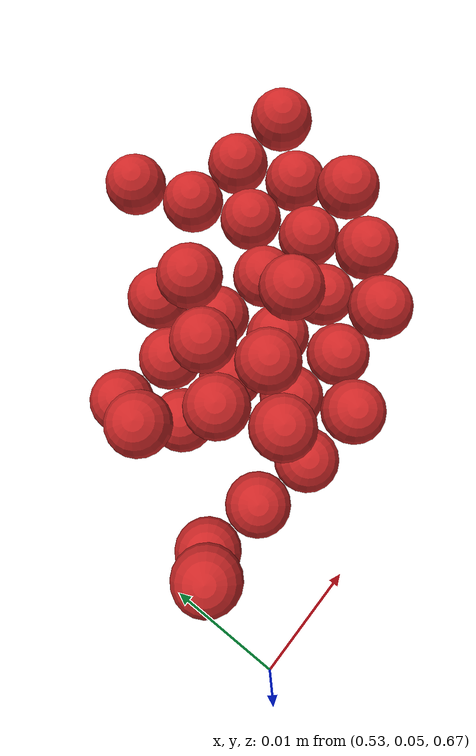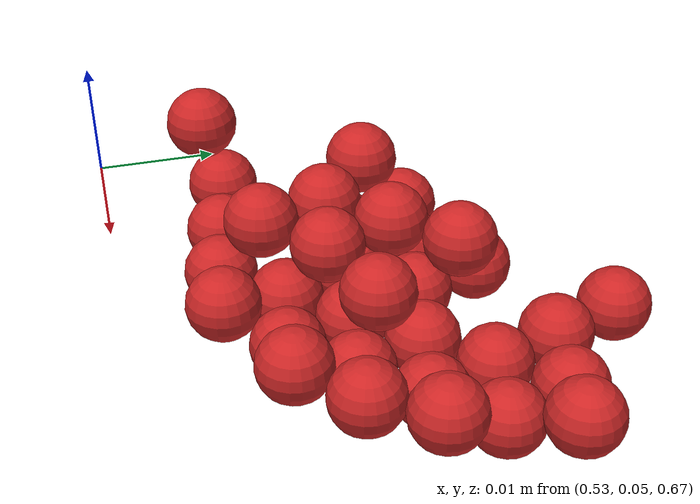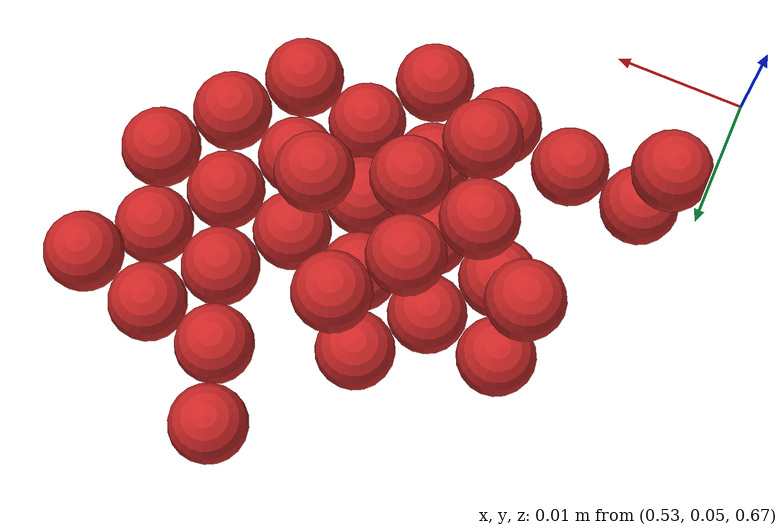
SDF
<sdf version="1.4">
 <world name="default">
  <model name="ground_plane">
   <static>1</static>
   <link name="link">
    <collision name="collision">
     <geometry><plane><normal>0 0 1</normal><size>100 100</size></plane></geometry>
     <surface><friction><ode><mu>100</mu><mu2>50</mu2></ode></friction></surface>
    </collision>
    <visual name="visual">
     <cast_shadows>0</cast_shadows>
     <geometry><plane><normal>0 0 1</normal><size>100 100</size></plane></geometry>
     <material>
      <script><uri>file://media/materials/scripts/gazebo.material</uri><name>Gazebo/Grey</name></script>
     </material>
    </visual>
    <velocity_decay><linear>0</linear><angular>0</angular></velocity_decay>
   </link>
  </model>
  <model name="sphere1">
   <pose>0.000168 -0.008124 -0.026197 0.000256 -0.000729 0.000186</pose>
   <link name="link">
    <pose>0.540545 0.067517 0.694885 0 -0 0</pose>
    <inertial>
     <mass>1e-08</mass>
     <inertia><ixx>4e-08</ixx><ixy>0</ixy><ixz>0</ixz><iyy>4e-08</iyy><iyz>0</iyz><izz>4e-08</izz></inertia>
    </inertial>
    <collision name="collision">
     <surface>
      <bounce><restitution_coefficient>0.5</restitution_coefficient><threshold>0</threshold></bounce>
      <contact><ode><kp>1e+08</kp><kd>1</kd></ode></contact>
      <friction><ode><mu>1e-06</mu><mu2>1e-06</mu2></ode></friction>
     </surface>
     <geometry><sphere><radius>0.003</radius></sphere></geometry>
    </collision>
    <visual name="visual">
     <geometry><sphere><radius>0.003</radius></sphere></geometry>
     <material>
      <script><uri>file://media/materials/scripts/gazebo.material</uri><name>Gazebo/Red</name></script>
     </material>
    </visual>
    <velocity_decay><linear>0</linear><angular>0</angular></velocity_decay>
   </link>
   <static>0</static>
  </model>
  <model name="sphere2">
   <pose>0.003783 -0.004308 -0.026368 0.000322 -0.000606 -2.64698e-23</pose>
   <link name="link">
    <pose>0.546545 0.067517 0.694885 0 -0 0</pose>
    <inertial>
     <mass>1e-08</mass>
     <inertia><ixx>4e-08</ixx><ixy>0</ixy><ixz>0</ixz><iyy>4e-08</iyy><iyz>0</iyz><izz>4e-08</izz></inertia>
    </inertial>
    <collision name="collision">
     <surface>
      <bounce><restitution_coefficient>0.5</restitution_coefficient><threshold>0</threshold></bounce>
      <contact><ode><kp>1e+08</kp><kd>1</kd></ode></contact>
      <friction><ode><mu>1e-06</mu><mu2>1e-06</mu2></ode></friction>
     </surface>
     <geometry><sphere><radius>0.003</radius></sphere></geometry>
    </collision>
    <visual name="visual">
     <geometry><sphere><radius>0.003</radius></sphere></geometry>
     <material>
      <script><uri>file://media/materials/scripts/gazebo.material</uri><name>Gazebo/Red</name></script>
     </material>
    </visual>
    <velocity_decay><linear>0</linear><angular>0</angular></velocity_decay>
   </link>
   <static>0</static>
  </model>
  <model name="sphere3">
   <pose>0.012325 -0.001566 -0.023496 -0.000143 0.000357 -6e-05</pose>
   <link name="link">
    <pose>0.552545 0.067517 0.694885 0 -0 0</pose>
    <inertial>
     <mass>1e-08</mass>
     <inertia><ixx>4e-08</ixx><ixy>0</ixy><ixz>0</ixz><iyy>4e-08</iyy><iyz>0</iyz><izz>4e-08</izz></inertia>
    </inertial>
    <collision name="collision">
     <surface>
      <bounce><restitution_coefficient>0.5</restitution_coefficient><threshold>0</threshold></bounce>
      <contact><ode><kp>1e+08</kp><kd>1</kd></ode></contact>
      <friction><ode><mu>1e-06</mu><mu2>1e-06</mu2></ode></friction>
     </surface>
     <geometry><sphere><radius>0.003</radius></sphere></geometry>
    </collision>
    <visual name="visual">
     <geometry><sphere><radius>0.003</radius></sphere></geometry>
     <material>
      <script><uri>file://media/materials/scripts/gazebo.material</uri><name>Gazebo/Red</name></script>
     </material>
    </visual>
    <velocity_decay><linear>0</linear><angular>0</angular></velocity_decay>
   </link>
   <static>0</static>
  </model>
  <model name="sphere6">
   <pose>0.004831 -9.6e-05 -0.02579 0.00028 0.000304 0</pose>
   <link name="link">
    <pose>0.546545 0.073517 0.694885 0 -0 0</pose>
    <inertial>
     <mass>1e-08</mass>
     <inertia><ixx>4e-08</ixx><ixy>0</ixy><ixz>0</ixz><iyy>4e-08</iyy><iyz>0</iyz><izz>4e-08</izz></inertia>
    </inertial>
    <collision name="collision">
     <surface>
      <bounce><restitution_coefficient>0.5</restitution_coefficient><threshold>0</threshold></bounce>
      <contact><ode><kp>1e+08</kp><kd>1</kd></ode></contact>
      <friction><ode><mu>1e-06</mu><mu2>1e-06</mu2></ode></friction>
     </surface>
     <geometry><sphere><radius>0.003</radius></sphere></geometry>
    </collision>
    <visual name="visual">
     <geometry><sphere><radius>0.003</radius></sphere></geometry>
     <material>
      <script><uri>file://media/materials/scripts/gazebo.material</uri><name>Gazebo/Red</name></script>
     </material>
    </visual>
    <velocity_decay><linear>0</linear><angular>0</angular></velocity_decay>
   </link>
   <static>0</static>
  </model>
  <model name="sphere7">
   <pose>0.016099 -0.002313 -0.023103 8.5e-05 -6.7e-05 -0.000356</pose>
   <link name="link">
    <pose>0.552545 0.073517 0.694885 0 -0 0</pose>
    <inertial>
     <mass>1e-08</mass>
     <inertia><ixx>4e-08</ixx><ixy>0</ixy><ixz>0</ixz><iyy>4e-08</iyy><iyz>0</iyz><izz>4e-08</izz></inertia>
    </inertial>
    <collision name="collision">
     <surface>
      <bounce><restitution_coefficient>0.5</restitution_coefficient><threshold>0</threshold></bounce>
      <contact><ode><kp>1e+08</kp><kd>1</kd></ode></contact>
      <friction><ode><mu>1e-06</mu><mu2>1e-06</mu2></ode></friction>
     </surface>
     <geometry><sphere><radius>0.003</radius></sphere></geometry>
    </collision>
    <visual name="visual">
     <geometry><sphere><radius>0.003</radius></sphere></geometry>
     <material>
      <script><uri>file://media/materials/scripts/gazebo.material</uri><name>Gazebo/Red</name></script>
     </material>
    </visual>
    <velocity_decay><linear>0</linear><angular>0</angular></velocity_decay>
   </link>
   <static>0</static>
  </model>
  <model name="sphere18">
   <pose>-0.000647 -0.009367 -0.031409 -0.000324 0.000296 -7.7e-05</pose>
   <link name="link">
    <pose>0.546545 0.067517 0.700885 0 -0 0</pose>
    <inertial>
     <mass>1e-08</mass>
     <inertia><ixx>4e-08</ixx><ixy>0</ixy><ixz>0</ixz><iyy>4e-08</iyy><iyz>0</iyz><izz>4e-08</izz></inertia>
    </inertial>
    <collision name="collision">
     <surface>
      <bounce><restitution_coefficient>0.5</restitution_coefficient><threshold>0</threshold></bounce>
      <contact><ode><kp>1e+08</kp><kd>1</kd></ode></contact>
      <friction><ode><mu>1e-06</mu><mu2>1e-06</mu2></ode></friction>
     </surface>
     <geometry><sphere><radius>0.003</radius></sphere></geometry>
    </collision>
    <visual name="visual">
     <geometry><sphere><radius>0.003</radius></sphere></geometry>
     <material>
      <script><uri>file://media/materials/scripts/gazebo.material</uri><name>Gazebo/Red</name></script>
     </material>
    </visual>
    <velocity_decay><linear>0</linear><angular>0</angular></velocity_decay>
   </link>
   <static>0</static>
  </model>
  <model name="sphere19">
   <pose>0.003403 -0.00545 -0.032095 8.1e-05 -0.000187 -2.3e-05</pose>
   <link name="link">
    <pose>0.552545 0.067517 0.700885 0 -0 0</pose>
    <inertial>
     <mass>1e-08</mass>
     <inertia><ixx>4e-08</ixx><ixy>0</ixy><ixz>0</ixz><iyy>4e-08</iyy><iyz>0</iyz><izz>4e-08</izz></inertia>
    </inertial>
    <collision name="collision">
     <surface>
      <bounce><restitution_coefficient>0.5</restitution_coefficient><threshold>0</threshold></bounce>
      <contact><ode><kp>1e+08</kp><kd>1</kd></ode></contact>
      <friction><ode><mu>1e-06</mu><mu2>1e-06</mu2></ode></friction>
     </surface>
     <geometry><sphere><radius>0.003</radius></sphere></geometry>
    </collision>
    <visual name="visual">
     <geometry><sphere><radius>0.003</radius></sphere></geometry>
     <material>
      <script><uri>file://media/materials/scripts/gazebo.material</uri><name>Gazebo/Red</name></script>
     </material>
    </visual>
    <velocity_decay><linear>0</linear><angular>0</angular></velocity_decay>
   </link>
   <static>0</static>
  </model>
  <model name="sphere23">
   <pose>0.010411 -0.002792 -0.031521 -0.000836 0.000662 9e-06</pose>
   <link name="link">
    <pose>0.552545 0.073517 0.700885 0 -0 0</pose>
    <inertial>
     <mass>1e-08</mass>
     <inertia><ixx>4e-08</ixx><ixy>0</ixy><ixz>0</ixz><iyy>4e-08</iyy><iyz>0</iyz><izz>4e-08</izz></inertia>
    </inertial>
    <collision name="collision">
     <surface>
      <bounce><restitution_coefficient>0.5</restitution_coefficient><threshold>0</threshold></bounce>
      <contact><ode><kp>1e+08</kp><kd>1</kd></ode></contact>
      <friction><ode><mu>1e-06</mu><mu2>1e-06</mu2></ode></friction>
     </surface>
     <geometry><sphere><radius>0.003</radius></sphere></geometry>
    </collision>
    <visual name="visual">
     <geometry><sphere><radius>0.003</radius></sphere></geometry>
     <material>
      <script><uri>file://media/materials/scripts/gazebo.material</uri><name>Gazebo/Red</name></script>
     </material>
    </visual>
    <velocity_decay><linear>0</linear><angular>0</angular></velocity_decay>
   </link>
   <static>0</static>
  </model>
  <model name="sphere27">
   <pose>0.012449 0.001611 -0.031825 -0.000596 0.000119 1.1e-05</pose>
   <link name="link">
    <pose>0.552545 0.079517 0.700885 0 -0 0</pose>
    <inertial>
     <mass>1e-08</mass>
     <inertia><ixx>4e-08</ixx><ixy>0</ixy><ixz>0</ixz><iyy>4e-08</iyy><iyz>0</iyz><izz>4e-08</izz></inertia>
    </inertial>
    <collision name="collision">
     <surface>
      <bounce><restitution_coefficient>0.5</restitution_coefficient><threshold>0</threshold></bounce>
      <contact><ode><kp>1e+08</kp><kd>1</kd></ode></contact>
      <friction><ode><mu>1e-06</mu><mu2>1e-06</mu2></ode></friction>
     </surface>
     <geometry><sphere><radius>0.003</radius></sphere></geometry>
    </collision>
    <visual name="visual">
     <geometry><sphere><radius>0.003</radius></sphere></geometry>
     <material>
      <script><uri>file://media/materials/scripts/gazebo.material</uri><name>Gazebo/Red</name></script>
     </material>
    </visual>
    <velocity_decay><linear>0</linear><angular>0</angular></velocity_decay>
   </link>
   <static>0</static>
  </model>
  <model name="sphere32">
   <pose>-0.000154 -0.006746 -0.03734 0.000604 -0.00014 -5.2e-05</pose>
   <link name="link">
    <pose>0.534545 0.067517 0.706885 0 -0 0</pose>
    <inertial>
     <mass>1e-08</mass>
     <inertia><ixx>4e-08</ixx><ixy>0</ixy><ixz>0</ixz><iyy>4e-08</iyy><iyz>0</iyz><izz>4e-08</izz></inertia>
    </inertial>
    <collision name="collision">
     <surface>
      <bounce><restitution_coefficient>0.5</restitution_coefficient><threshold>0</threshold></bounce>
      <contact><ode><kp>1e+08</kp><kd>1</kd></ode></contact>
      <friction><ode><mu>1e-06</mu><mu2>1e-06</mu2></ode></friction>
     </surface>
     <geometry><sphere><radius>0.003</radius></sphere></geometry>
    </collision>
    <visual name="visual">
     <geometry><sphere><radius>0.003</radius></sphere></geometry>
     <material>
      <script><uri>file://media/materials/scripts/gazebo.material</uri><name>Gazebo/Red</name></script>
     </material>
    </visual>
    <velocity_decay><linear>0</linear><angular>0</angular></velocity_decay>
   </link>
   <static>0</static>
  </model>
  <model name="sphere33">
   <pose>0.006077 -0.005772 -0.032692 0 -0 0</pose>
   <link name="link">
    <pose>0.540545 0.067517 0.706885 0 -0 0</pose>
    <inertial>
     <mass>1e-08</mass>
     <inertia><ixx>4e-08</ixx><ixy>0</ixy><ixz>0</ixz><iyy>4e-08</iyy><iyz>0</iyz><izz>4e-08</izz></inertia>
    </inertial>
    <collision name="collision">
     <surface>
      <bounce><restitution_coefficient>0.5</restitution_coefficient><threshold>0</threshold></bounce>
      <contact><ode><kp>1e+08</kp><kd>1</kd></ode></contact>
      <friction><ode><mu>1e-06</mu><mu2>1e-06</mu2></ode></friction>
     </surface>
     <geometry><sphere><radius>0.003</radius></sphere></geometry>
    </collision>
    <visual name="visual">
     <geometry><sphere><radius>0.003</radius></sphere></geometry>
     <material>
      <script><uri>file://media/materials/scripts/gazebo.material</uri><name>Gazebo/Red</name></script>
     </material>
    </visual>
    <velocity_decay><linear>0</linear><angular>0</angular></velocity_decay>
   </link>
   <static>0</static>
  </model>
  <model name="sphere34">
   <pose>0.007107 0.000179 -0.037913 0.000113 8.3e-05 -3e-06</pose>
   <link name="link">
    <pose>0.546545 0.067517 0.706885 0 -0 0</pose>
    <inertial>
     <mass>1e-08</mass>
     <inertia><ixx>4e-08</ixx><ixy>0</ixy><ixz>0</ixz><iyy>4e-08</iyy><iyz>0</iyz><izz>4e-08</izz></inertia>
    </inertial>
    <collision name="collision">
     <surface>
      <bounce><restitution_coefficient>0.5</restitution_coefficient><threshold>0</threshold></bounce>
      <contact><ode><kp>1e+08</kp><kd>1</kd></ode></contact>
      <friction><ode><mu>1e-06</mu><mu2>1e-06</mu2></ode></friction>
     </surface>
     <geometry><sphere><radius>0.003</radius></sphere></geometry>
    </collision>
    <visual name="visual">
     <geometry><sphere><radius>0.003</radius></sphere></geometry>
     <material>
      <script><uri>file://media/materials/scripts/gazebo.material</uri><name>Gazebo/Red</name></script>
     </material>
    </visual>
    <velocity_decay><linear>0</linear><angular>0</angular></velocity_decay>
   </link>
   <static>0</static>
  </model>
  <model name="sphere39">
   <pose>0.014796 0.002671 -0.038138 0.000351 -0.000175 1.1e-05</pose>
   <link name="link">
    <pose>0.552545 0.073517 0.706885 0 -0 0</pose>
    <inertial>
     <mass>1e-08</mass>
     <inertia><ixx>4e-08</ixx><ixy>0</ixy><ixz>0</ixz><iyy>4e-08</iyy><iyz>0</iyz><izz>4e-08</izz></inertia>
    </inertial>
    <collision name="collision">
     <surface>
      <bounce><restitution_coefficient>0.5</restitution_coefficient><threshold>0</threshold></bounce>
      <contact><ode><kp>1e+08</kp><kd>1</kd></ode></contact>
      <friction><ode><mu>1e-06</mu><mu2>1e-06</mu2></ode></friction>
     </surface>
     <geometry><sphere><radius>0.003</radius></sphere></geometry>
    </collision>
    <visual name="visual">
     <geometry><sphere><radius>0.003</radius></sphere></geometry>
     <material>
      <script><uri>file://media/materials/scripts/gazebo.material</uri><name>Gazebo/Red</name></script>
     </material>
    </visual>
    <velocity_decay><linear>0</linear><angular>0</angular></velocity_decay>
   </link>
   <static>0</static>
  </model>
  <model name="sphere43">
   <pose>0.01812 0.000888 -0.035838 -0.000183 -0.000245 -0.000251</pose>
   <link name="link">
    <pose>0.552545 0.079517 0.706885 0 -0 0</pose>
    <inertial>
     <mass>1e-08</mass>
     <inertia><ixx>4e-08</ixx><ixy>0</ixy><ixz>0</ixz><iyy>4e-08</iyy><iyz>0</iyz><izz>4e-08</izz></inertia>
    </inertial>
    <collision name="collision">
     <surface>
      <bounce><restitution_coefficient>0.5</restitution_coefficient><threshold>0</threshold></bounce>
      <contact><ode><kp>1e+08</kp><kd>1</kd></ode></contact>
      <friction><ode><mu>1e-06</mu><mu2>1e-06</mu2></ode></friction>
     </surface>
     <geometry><sphere><radius>0.003</radius></sphere></geometry>
    </collision>
    <visual name="visual">
     <geometry><sphere><radius>0.003</radius></sphere></geometry>
     <material>
      <script><uri>file://media/materials/scripts/gazebo.material</uri><name>Gazebo/Red</name></script>
     </material>
    </visual>
    <velocity_decay><linear>0</linear><angular>0</angular></velocity_decay>
   </link>
   <static>0</static>
  </model>
  <model name="sphere50">
   <pose>0.005594 -0.009769 -0.042226 0.000399 -7.8e-05 0.000431</pose>
   <link name="link">
    <pose>0.546545 0.067517 0.712885 0 -0 0</pose>
    <inertial>
     <mass>1e-08</mass>
     <inertia><ixx>4e-08</ixx><ixy>0</ixy><ixz>0</ixz><iyy>4e-08</iyy><iyz>0</iyz><izz>4e-08</izz></inertia>
    </inertial>
    <collision name="collision">
     <surface>
      <bounce><restitution_coefficient>0.5</restitution_coefficient><threshold>0</threshold></bounce>
      <contact><ode><kp>1e+08</kp><kd>1</kd></ode></contact>
      <friction><ode><mu>1e-06</mu><mu2>1e-06</mu2></ode></friction>
     </surface>
     <geometry><sphere><radius>0.003</radius></sphere></geometry>
    </collision>
    <visual name="visual">
     <geometry><sphere><radius>0.003</radius></sphere></geometry>
     <material>
      <script><uri>file://media/materials/scripts/gazebo.material</uri><name>Gazebo/Red</name></script>
     </material>
    </visual>
    <velocity_decay><linear>0</linear><angular>0</angular></velocity_decay>
   </link>
   <static>0</static>
  </model>
  <model name="sphere51">
   <pose>0.008688 -0.005814 -0.041328 0.00066 -6.8e-05 0.000597</pose>
   <link name="link">
    <pose>0.552545 0.067517 0.712885 0 -0 0</pose>
    <inertial>
     <mass>1e-08</mass>
     <inertia><ixx>4e-08</ixx><ixy>0</ixy><ixz>0</ixz><iyy>4e-08</iyy><iyz>0</iyz><izz>4e-08</izz></inertia>
    </inertial>
    <collision name="collision">
     <surface>
      <bounce><restitution_coefficient>0.5</restitution_coefficient><threshold>0</threshold></bounce>
      <contact><ode><kp>1e+08</kp><kd>1</kd></ode></contact>
      <friction><ode><mu>1e-06</mu><mu2>1e-06</mu2></ode></friction>
     </surface>
     <geometry><sphere><radius>0.003</radius></sphere></geometry>
    </collision>
    <visual name="visual">
     <geometry><sphere><radius>0.003</radius></sphere></geometry>
     <material>
      <script><uri>file://media/materials/scripts/gazebo.material</uri><name>Gazebo/Red</name></script>
     </material>
    </visual>
    <velocity_decay><linear>0</linear><angular>0</angular></velocity_decay>
   </link>
   <static>0</static>
  </model>
  <model name="sphere53">
   <pose>-0.001368 -0.001823 -0.039089 0 -0 0</pose>
   <link name="link">
    <pose>0.540545 0.073517 0.712885 0 -0 0</pose>
    <inertial>
     <mass>1e-08</mass>
     <inertia><ixx>4e-08</ixx><ixy>0</ixy><ixz>0</ixz><iyy>4e-08</iyy><iyz>0</iyz><izz>4e-08</izz></inertia>
    </inertial>
    <collision name="collision">
     <surface>
      <bounce><restitution_coefficient>0.5</restitution_coefficient><threshold>0</threshold></bounce>
      <contact><ode><kp>1e+08</kp><kd>1</kd></ode></contact>
      <friction><ode><mu>1e-06</mu><mu2>1e-06</mu2></ode></friction>
     </surface>
     <geometry><sphere><radius>0.003</radius></sphere></geometry>
    </collision>
    <visual name="visual">
     <geometry><sphere><radius>0.003</radius></sphere></geometry>
     <material>
      <script><uri>file://media/materials/scripts/gazebo.material</uri><name>Gazebo/Red</name></script>
     </material>
    </visual>
    <velocity_decay><linear>0</linear><angular>0</angular></velocity_decay>
   </link>
   <static>0</static>
  </model>
  <model name="sphere54">
   <pose>-0.000735 0.000706 -0.044087 4.4e-05 -0.000216 0</pose>
   <link name="link">
    <pose>0.546545 0.073517 0.712885 0 -0 0</pose>
    <inertial>
     <mass>1e-08</mass>
     <inertia><ixx>4e-08</ixx><ixy>0</ixy><ixz>0</ixz><iyy>4e-08</iyy><iyz>0</iyz><izz>4e-08</izz></inertia>
    </inertial>
    <collision name="collision">
     <surface>
      <bounce><restitution_coefficient>0.5</restitution_coefficient><threshold>0</threshold></bounce>
      <contact><ode><kp>1e+08</kp><kd>1</kd></ode></contact>
      <friction><ode><mu>1e-06</mu><mu2>1e-06</mu2></ode></friction>
     </surface>
     <geometry><sphere><radius>0.003</radius></sphere></geometry>
    </collision>
    <visual name="visual">
     <geometry><sphere><radius>0.003</radius></sphere></geometry>
     <material>
      <script><uri>file://media/materials/scripts/gazebo.material</uri><name>Gazebo/Red</name></script>
     </material>
    </visual>
    <velocity_decay><linear>0</linear><angular>0</angular></velocity_decay>
   </link>
   <static>0</static>
  </model>
  <model name="sphere55">
   <pose>0.004982 -0.001148 -0.043985 0.000156 -4.6e-05 0</pose>
   <link name="link">
    <pose>0.552545 0.073517 0.712885 0 -0 0</pose>
    <inertial>
     <mass>1e-08</mass>
     <inertia><ixx>4e-08</ixx><ixy>0</ixy><ixz>0</ixz><iyy>4e-08</iyy><iyz>0</iyz><izz>4e-08</izz></inertia>
    </inertial>
    <collision name="collision">
     <surface>
      <bounce><restitution_coefficient>0.5</restitution_coefficient><threshold>0</threshold></bounce>
      <contact><ode><kp>1e+08</kp><kd>1</kd></ode></contact>
      <friction><ode><mu>1e-06</mu><mu2>1e-06</mu2></ode></friction>
     </surface>
     <geometry><sphere><radius>0.003</radius></sphere></geometry>
    </collision>
    <visual name="visual">
     <geometry><sphere><radius>0.003</radius></sphere></geometry>
     <material>
      <script><uri>file://media/materials/scripts/gazebo.material</uri><name>Gazebo/Red</name></script>
     </material>
    </visual>
    <velocity_decay><linear>0</linear><angular>0</angular></velocity_decay>
   </link>
   <static>0</static>
  </model>
  <model name="sphere58">
   <pose>0.002891 -0.000661 -0.043923 3e-05 2.8e-05 0</pose>
   <link name="link">
    <pose>0.546545 0.079517 0.712885 0 -0 0</pose>
    <inertial>
     <mass>1e-08</mass>
     <inertia><ixx>4e-08</ixx><ixy>0</ixy><ixz>0</ixz><iyy>4e-08</iyy><iyz>0</iyz><izz>4e-08</izz></inertia>
    </inertial>
    <collision name="collision">
     <surface>
      <bounce><restitution_coefficient>0.5</restitution_coefficient><threshold>0</threshold></bounce>
      <contact><ode><kp>1e+08</kp><kd>1</kd></ode></contact>
      <friction><ode><mu>1e-06</mu><mu2>1e-06</mu2></ode></friction>
     </surface>
     <geometry><sphere><radius>0.003</radius></sphere></geometry>
    </collision>
    <visual name="visual">
     <geometry><sphere><radius>0.003</radius></sphere></geometry>
     <material>
      <script><uri>file://media/materials/scripts/gazebo.material</uri><name>Gazebo/Red</name></script>
     </material>
    </visual>
    <velocity_decay><linear>0</linear><angular>0</angular></velocity_decay>
   </link>
   <static>0</static>
  </model>
  <model name="sphere65">
   <pose>0.002021 0.001899 -0.050473 -0.000202 -0.000959 2.64698e-23</pose>
   <link name="link">
    <pose>0.540545 0.067517 0.718885 0 -0 0</pose>
    <inertial>
     <mass>1e-08</mass>
     <inertia><ixx>4e-08</ixx><ixy>0</ixy><ixz>0</ixz><iyy>4e-08</iyy><iyz>0</iyz><izz>4e-08</izz></inertia>
    </inertial>
    <collision name="collision">
     <surface>
      <bounce><restitution_coefficient>0.5</restitution_coefficient><threshold>0</threshold></bounce>
      <contact><ode><kp>1e+08</kp><kd>1</kd></ode></contact>
      <friction><ode><mu>1e-06</mu><mu2>1e-06</mu2></ode></friction>
     </surface>
     <geometry><sphere><radius>0.003</radius></sphere></geometry>
    </collision>
    <visual name="visual">
     <geometry><sphere><radius>0.003</radius></sphere></geometry>
     <material>
      <script><uri>file://media/materials/scripts/gazebo.material</uri><name>Gazebo/Red</name></script>
     </material>
    </visual>
    <velocity_decay><linear>0</linear><angular>0</angular></velocity_decay>
   </link>
   <static>0</static>
  </model>
  <model name="sphere66">
   <pose>0.001067 0.001039 -0.049821 -5.1e-05 0.000227 0</pose>
   <link name="link">
    <pose>0.546545 0.067517 0.718885 0 -0 0</pose>
    <inertial>
     <mass>1e-08</mass>
     <inertia><ixx>4e-08</ixx><ixy>0</ixy><ixz>0</ixz><iyy>4e-08</iyy><iyz>0</iyz><izz>4e-08</izz></inertia>
    </inertial>
    <collision name="collision">
     <surface>
      <bounce><restitution_coefficient>0.5</restitution_coefficient><threshold>0</threshold></bounce>
      <contact><ode><kp>1e+08</kp><kd>1</kd></ode></contact>
      <friction><ode><mu>1e-06</mu><mu2>1e-06</mu2></ode></friction>
     </surface>
     <geometry><sphere><radius>0.003</radius></sphere></geometry>
    </collision>
    <visual name="visual">
     <geometry><sphere><radius>0.003</radius></sphere></geometry>
     <material>
      <script><uri>file://media/materials/scripts/gazebo.material</uri><name>Gazebo/Red</name></script>
     </material>
    </visual>
    <velocity_decay><linear>0</linear><angular>0</angular></velocity_decay>
   </link>
   <static>0</static>
  </model>
  <model name="sphere67">
   <pose>0.007248 -0.000553 -0.050187 0.000433 -0.000224 0</pose>
   <link name="link">
    <pose>0.552545 0.067517 0.718885 0 -0 0</pose>
    <inertial>
     <mass>1e-08</mass>
     <inertia><ixx>4e-08</ixx><ixy>0</ixy><ixz>0</ixz><iyy>4e-08</iyy><iyz>0</iyz><izz>4e-08</izz></inertia>
    </inertial>
    <collision name="collision">
     <surface>
      <bounce><restitution_coefficient>0.5</restitution_coefficient><threshold>0</threshold></bounce>
      <contact><ode><kp>1e+08</kp><kd>1</kd></ode></contact>
      <friction><ode><mu>1e-06</mu><mu2>1e-06</mu2></ode></friction>
     </surface>
     <geometry><sphere><radius>0.003</radius></sphere></geometry>
    </collision>
    <visual name="visual">
     <geometry><sphere><radius>0.003</radius></sphere></geometry>
     <material>
      <script><uri>file://media/materials/scripts/gazebo.material</uri><name>Gazebo/Red</name></script>
     </material>
    </visual>
    <velocity_decay><linear>0</linear><angular>0</angular></velocity_decay>
   </link>
   <static>0</static>
  </model>
  <model name="sphere69">
   <pose>-0.000967 0.00181 -0.049858 0.000237 0.000216 0</pose>
   <link name="link">
    <pose>0.540545 0.073517 0.718885 0 -0 0</pose>
    <inertial>
     <mass>1e-08</mass>
     <inertia><ixx>4e-08</ixx><ixy>0</ixy><ixz>0</ixz><iyy>4e-08</iyy><iyz>0</iyz><izz>4e-08</izz></inertia>
    </inertial>
    <collision name="collision">
     <surface>
      <bounce><restitution_coefficient>0.5</restitution_coefficient><threshold>0</threshold></bounce>
      <contact><ode><kp>1e+08</kp><kd>1</kd></ode></contact>
      <friction><ode><mu>1e-06</mu><mu2>1e-06</mu2></ode></friction>
     </surface>
     <geometry><sphere><radius>0.003</radius></sphere></geometry>
    </collision>
    <visual name="visual">
     <geometry><sphere><radius>0.003</radius></sphere></geometry>
     <material>
      <script><uri>file://media/materials/scripts/gazebo.material</uri><name>Gazebo/Red</name></script>
     </material>
    </visual>
    <velocity_decay><linear>0</linear><angular>0</angular></velocity_decay>
   </link>
   <static>0</static>
  </model>
  <model name="sphere70">
   <pose>0.005585 0.003115 -0.045062 0 -0 0</pose>
   <link name="link">
    <pose>0.546545 0.073517 0.718885 0 -0 0</pose>
    <inertial>
     <mass>1e-08</mass>
     <inertia><ixx>4e-08</ixx><ixy>0</ixy><ixz>0</ixz><iyy>4e-08</iyy><iyz>0</iyz><izz>4e-08</izz></inertia>
    </inertial>
    <collision name="collision">
     <surface>
      <bounce><restitution_coefficient>0.5</restitution_coefficient><threshold>0</threshold></bounce>
      <contact><ode><kp>1e+08</kp><kd>1</kd></ode></contact>
      <friction><ode><mu>1e-06</mu><mu2>1e-06</mu2></ode></friction>
     </surface>
     <geometry><sphere><radius>0.003</radius></sphere></geometry>
    </collision>
    <visual name="visual">
     <geometry><sphere><radius>0.003</radius></sphere></geometry>
     <material>
      <script><uri>file://media/materials/scripts/gazebo.material</uri><name>Gazebo/Red</name></script>
     </material>
    </visual>
    <velocity_decay><linear>0</linear><angular>0</angular></velocity_decay>
   </link>
   <static>0</static>
  </model>
  <model name="sphere71">
   <pose>0.008756 0.003704 -0.050056 0.000444 -2.5e-05 0</pose>
   <link name="link">
    <pose>0.552545 0.073517 0.718885 0 -0 0</pose>
    <inertial>
     <mass>1e-08</mass>
     <inertia><ixx>4e-08</ixx><ixy>0</ixy><ixz>0</ixz><iyy>4e-08</iyy><iyz>0</iyz><izz>4e-08</izz></inertia>
    </inertial>
    <collision name="collision">
     <surface>
      <bounce><restitution_coefficient>0.5</restitution_coefficient><threshold>0</threshold></bounce>
      <contact><ode><kp>1e+08</kp><kd>1</kd></ode></contact>
      <friction><ode><mu>1e-06</mu><mu2>1e-06</mu2></ode></friction>
     </surface>
     <geometry><sphere><radius>0.003</radius></sphere></geometry>
    </collision>
    <visual name="visual">
     <geometry><sphere><radius>0.003</radius></sphere></geometry>
     <material>
      <script><uri>file://media/materials/scripts/gazebo.material</uri><name>Gazebo/Red</name></script>
     </material>
    </visual>
    <velocity_decay><linear>0</linear><angular>0</angular></velocity_decay>
   </link>
   <static>0</static>
  </model>
  <model name="sphere80">
   <pose>-0.001412 -0.008139 -0.049634 0.000285 -0.000151 -0.000328</pose>
   <link name="link">
    <pose>0.534545 0.067517 0.724885 0 -0 0</pose>
    <inertial>
     <mass>1e-08</mass>
     <inertia><ixx>4e-08</ixx><ixy>0</ixy><ixz>0</ixz><iyy>4e-08</iyy><iyz>0</iyz><izz>4e-08</izz></inertia>
    </inertial>
    <collision name="collision">
     <surface>
      <bounce><restitution_coefficient>0.5</restitution_coefficient><threshold>0</threshold></bounce>
      <contact><ode><kp>1e+08</kp><kd>1</kd></ode></contact>
      <friction><ode><mu>1e-06</mu><mu2>1e-06</mu2></ode></friction>
     </surface>
     <geometry><sphere><radius>0.003</radius></sphere></geometry>
    </collision>
    <visual name="visual">
     <geometry><sphere><radius>0.003</radius></sphere></geometry>
     <material>
      <script><uri>file://media/materials/scripts/gazebo.material</uri><name>Gazebo/Red</name></script>
     </material>
    </visual>
    <velocity_decay><linear>0</linear><angular>0</angular></velocity_decay>
   </link>
   <static>0</static>
  </model>
  <model name="sphere81">
   <pose>0.003977 -0.000167 -0.0511 0 -0 0</pose>
   <link name="link">
    <pose>0.540545 0.067517 0.724885 0 -0 0</pose>
    <inertial>
     <mass>1e-08</mass>
     <inertia><ixx>4e-08</ixx><ixy>0</ixy><ixz>0</ixz><iyy>4e-08</iyy><iyz>0</iyz><izz>4e-08</izz></inertia>
    </inertial>
    <collision name="collision">
     <surface>
      <bounce><restitution_coefficient>0.5</restitution_coefficient><threshold>0</threshold></bounce>
      <contact><ode><kp>1e+08</kp><kd>1</kd></ode></contact>
      <friction><ode><mu>1e-06</mu><mu2>1e-06</mu2></ode></friction>
     </surface>
     <geometry><sphere><radius>0.003</radius></sphere></geometry>
    </collision>
    <visual name="visual">
     <geometry><sphere><radius>0.003</radius></sphere></geometry>
     <material>
      <script><uri>file://media/materials/scripts/gazebo.material</uri><name>Gazebo/Red</name></script>
     </material>
    </visual>
    <velocity_decay><linear>0</linear><angular>0</angular></velocity_decay>
   </link>
   <static>0</static>
  </model>
  <model name="sphere82">
   <pose>0.00391 -0.001172 -0.051073 0 -0 0</pose>
   <link name="link">
    <pose>0.546545 0.067517 0.724885 0 -0 0</pose>
    <inertial>
     <mass>1e-08</mass>
     <inertia><ixx>4e-08</ixx><ixy>0</ixy><ixz>0</ixz><iyy>4e-08</iyy><iyz>0</iyz><izz>4e-08</izz></inertia>
    </inertial>
    <collision name="collision">
     <surface>
      <bounce><restitution_coefficient>0.5</restitution_coefficient><threshold>0</threshold></bounce>
      <contact><ode><kp>1e+08</kp><kd>1</kd></ode></contact>
      <friction><ode><mu>1e-06</mu><mu2>1e-06</mu2></ode></friction>
     </surface>
     <geometry><sphere><radius>0.003</radius></sphere></geometry>
    </collision>
    <visual name="visual">
     <geometry><sphere><radius>0.003</radius></sphere></geometry>
     <material>
      <script><uri>file://media/materials/scripts/gazebo.material</uri><name>Gazebo/Red</name></script>
     </material>
    </visual>
    <velocity_decay><linear>0</linear><angular>0</angular></velocity_decay>
   </link>
   <static>0</static>
  </model>
  <model name="sphere83">
   <pose>0.004457 0.001304 -0.051078 0 -0 0</pose>
   <link name="link">
    <pose>0.552545 0.067517 0.724885 0 -0 0</pose>
    <inertial>
     <mass>1e-08</mass>
     <inertia><ixx>4e-08</ixx><ixy>0</ixy><ixz>0</ixz><iyy>4e-08</iyy><iyz>0</iyz><izz>4e-08</izz></inertia>
    </inertial>
    <collision name="collision">
     <surface>
      <bounce><restitution_coefficient>0.5</restitution_coefficient><threshold>0</threshold></bounce>
      <contact><ode><kp>1e+08</kp><kd>1</kd></ode></contact>
      <friction><ode><mu>1e-06</mu><mu2>1e-06</mu2></ode></friction>
     </surface>
     <geometry><sphere><radius>0.003</radius></sphere></geometry>
    </collision>
    <visual name="visual">
     <geometry><sphere><radius>0.003</radius></sphere></geometry>
     <material>
      <script><uri>file://media/materials/scripts/gazebo.material</uri><name>Gazebo/Red</name></script>
     </material>
    </visual>
    <velocity_decay><linear>0</linear><angular>0</angular></velocity_decay>
   </link>
   <static>0</static>
  </model>
  <model name="sphere86">
   <pose>0.001787 -0.001521 -0.051065 0 -0 0</pose>
   <link name="link">
    <pose>0.546545 0.073517 0.724885 0 -0 0</pose>
    <inertial>
     <mass>1e-08</mass>
     <inertia><ixx>4e-08</ixx><ixy>0</ixy><ixz>0</ixz><iyy>4e-08</iyy><iyz>0</iyz><izz>4e-08</izz></inertia>
    </inertial>
    <collision name="collision">
     <surface>
      <bounce><restitution_coefficient>0.5</restitution_coefficient><threshold>0</threshold></bounce>
      <contact><ode><kp>1e+08</kp><kd>1</kd></ode></contact>
      <friction><ode><mu>1e-06</mu><mu2>1e-06</mu2></ode></friction>
     </surface>
     <geometry><sphere><radius>0.003</radius></sphere></geometry>
    </collision>
    <visual name="visual">
     <geometry><sphere><radius>0.003</radius></sphere></geometry>
     <material>
      <script><uri>file://media/materials/scripts/gazebo.material</uri><name>Gazebo/Red</name></script>
     </material>
    </visual>
    <velocity_decay><linear>0</linear><angular>0</angular></velocity_decay>
   </link>
   <static>0</static>
  </model>
  <model name="sphere91">
   <pose>0.006576 0.003117 -0.055937 0.000167 5e-05 0</pose>
   <link name="link">
    <pose>0.552545 0.079517 0.724885 0 -0 0</pose>
    <inertial>
     <mass>1e-08</mass>
     <inertia><ixx>4e-08</ixx><ixy>0</ixy><ixz>0</ixz><iyy>4e-08</iyy><iyz>0</iyz><izz>4e-08</izz></inertia>
    </inertial>
    <collision name="collision">
     <surface>
      <bounce><restitution_coefficient>0.5</restitution_coefficient><threshold>0</threshold></bounce>
      <contact><ode><kp>1e+08</kp><kd>1</kd></ode></contact>
      <friction><ode><mu>1e-06</mu><mu2>1e-06</mu2></ode></friction>
     </surface>
     <geometry><sphere><radius>0.003</radius></sphere></geometry>
    </collision>
    <visual name="visual">
     <geometry><sphere><radius>0.003</radius></sphere></geometry>
     <material>
      <script><uri>file://media/materials/scripts/gazebo.material</uri><name>Gazebo/Red</name></script>
     </material>
    </visual>
    <velocity_decay><linear>0</linear><angular>0</angular></velocity_decay>
   </link>
   <static>0</static>
  </model>
  <model name="sphere95">
   <pose>0.004632 0.00231 -0.056008 -0.000406 -0.0002 0</pose>
   <link name="link">
    <pose>0.552545 0.085517 0.724885 0 -0 0</pose>
    <inertial>
     <mass>1e-08</mass>
     <inertia><ixx>4e-08</ixx><ixy>0</ixy><ixz>0</ixz><iyy>4e-08</iyy><iyz>0</iyz><izz>4e-08</izz></inertia>
    </inertial>
    <collision name="collision">
     <surface>
      <bounce><restitution_coefficient>0.5</restitution_coefficient><threshold>0</threshold></bounce>
      <contact><ode><kp>1e+08</kp><kd>1</kd></ode></contact>
      <friction><ode><mu>1e-06</mu><mu2>1e-06</mu2></ode></friction>
     </surface>
     <geometry><sphere><radius>0.003</radius></sphere></geometry>
    </collision>
    <visual name="visual">
     <geometry><sphere><radius>0.003</radius></sphere></geometry>
     <material>
      <script><uri>file://media/materials/scripts/gazebo.material</uri><name>Gazebo/Red</name></script>
     </material>
    </visual>
    <velocity_decay><linear>0</linear><angular>0</angular></velocity_decay>
   </link>
   <static>0</static>
  </model>
 </world>
</sdf>
